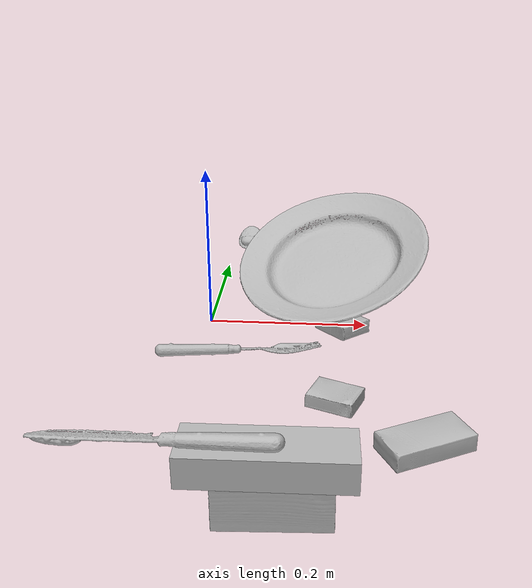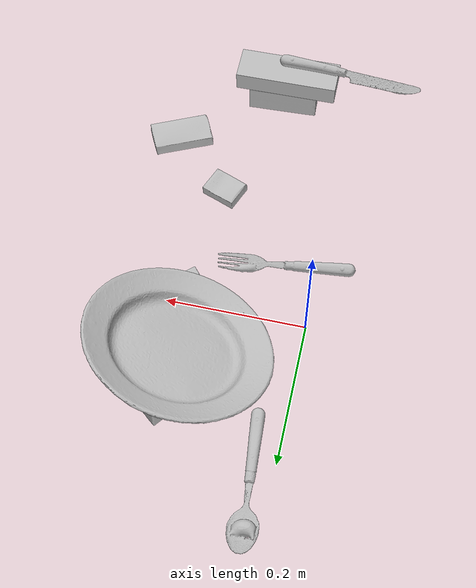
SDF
<sdf version="1.4">
  <world name="default">
    <light name="light1" type="point">
      <pose>0 0 1 0 0 0</pose>
      <diffuse>3 3 3 1</diffuse>
      <specular>3 3 3 1</specular>
    </light>
    <light name="light2" type="point">
      <pose>0 0.5 2 0 0 0</pose>
      <diffuse>1 1 1 1</diffuse>
      <specular>1 1 1 1</specular>
    </light>
    <light name="light3" type="point">
      <pose>0 0.5 2 0 0 0</pose>
      <diffuse>3 3 3 1</diffuse>
      <specular>3 3 3 1</specular>
    </light>
    <scene>
      <ambient>0.7 0.7 0.7</ambient>
    </scene>
    <model name="box11">
      <link name="link_box11">
        <collision name="default">
          <geometry>
            <mesh>
              <uri>model://cracker_box/collision_meshes/collision.obj</uri>
              <scale>0.25 0.25 0.25</scale>
            </mesh>
          </geometry>
          <surface>
            <friction>
              <ode>
                <mu>0.5</mu>
                <mu2>0.5</mu2>
              </ode>
            </friction>
          <contact>
        <ode>
            <max_vel>0</max_vel>
            <min_depth>0.0001</min_depth>
            <kp>1e8</kp>
        </ode>
    </contact></surface>
        </collision>
        <visual name="default">
          <geometry>
            <mesh>
              <uri>model://cracker_box/visual_meshes/visual.dae</uri>
              <scale>0.25 0.25 0.25</scale>
            </mesh>
          </geometry>
        </visual>
        <inertial>
          <mass>0.022244147956371307</mass>
          <pose>0.00023660442093387246 6.358561950037256e-05 -0.00042573834070935845 -0.00031620774024180285 -0.011106489600345375 0.0025467943041161943</pose>
          <inertia>
            <ixx>3.5361988e-06</ixx>
            <iyy>5.838959e-06</iyy>
            <izz>8.33273e-06</izz>
            <ixy>0</ixy>
            <ixz>0</ixz>
            <iyz>0</iyz>
          </inertia>
        </inertial>
      </link>
      <pose>0.15981674194335938 -0.1934477835893631 0.009120453149080276 -0.011787812630951145 -0.0073671721294880635 2.764761190873991</pose>
    </model>
    <model name="box12">
      <link name="link_box12">
        <collision name="default">
          <geometry>
            <mesh>
              <uri>model://wood_block/collision_meshes/collision.obj</uri>
              <scale>0.5 0.5 0.5</scale>
            </mesh>
          </geometry>
          <surface>
            <friction>
              <ode>
                <mu>0.5</mu>
                <mu2>0.5</mu2>
              </ode>
            </friction>
          <contact>
        <ode>
            <max_vel>0</max_vel>
            <min_depth>0.0001</min_depth>
            <kp>1e8</kp>
        </ode>
    </contact></surface>
        </collision>
        <visual name="default">
          <geometry>
            <mesh>
              <uri>model://wood_block/visual_meshes/visual.dae</uri>
              <scale>0.5 0.5 0.5</scale>
            </mesh>
          </geometry>
        </visual>
        <inertial>
          <mass>0.19826212525367737</mass>
          <pose>-2.9066577553749084e-06 -0.00028540476341731846 0.00013204291462898254 -0.05221087153268513 -0.0051926957009938435 -0.006861378574469354</pose>
          <inertia>
            <ixx>6.632619e-05</ixx>
            <iyy>0.00020952444</iyy>
            <izz>0.0002087407</izz>
            <ixy>0</ixy>
            <ixz>0</ixz>
            <iyz>0</iyz>
          </inertia>
        </inertial>
      </link>
      <pose>0.10685034841299057 -0.3768015503883362 0.02262936159968376 -0.0052189372853298464 0.005720256366020585 -3.09671022319252</pose>
    </model>
    <model name="box13">
      <link name="link_box13">
        <collision name="default">
          <geometry>
            <mesh>
              <uri>model://pudding_box/collision_meshes/collision.obj</uri>
              <scale>0.5 0.5 0.5</scale>
            </mesh>
          </geometry>
          <surface>
            <friction>
              <ode>
                <mu>0.5</mu>
                <mu2>0.5</mu2>
              </ode>
            </friction>
          <contact>
        <ode>
            <max_vel>0</max_vel>
            <min_depth>0.0001</min_depth>
            <kp>1e8</kp>
        </ode>
    </contact></surface>
        </collision>
        <visual name="default">
          <geometry>
            <mesh>
              <uri>model://pudding_box/visual_meshes/visual.dae</uri>
              <scale>0.5 0.5 0.5</scale>
            </mesh>
          </geometry>
        </visual>
        <inertial>
          <mass>0.049741584807634354</mass>
          <pose>0.00024474109522998333 0.0004033942532259971 -0.0002594413817860186 0.005213101800084814 -0.006603799174386178 0.020079821432586128</pose>
          <inertia>
            <ixx>1.4057575e-05</ixx>
            <iyy>9.458037e-06</iyy>
            <izz>2.0759684e-05</izz>
            <ixy>0</ixy>
            <ixz>0</ixz>
            <iyz>0</iyz>
          </inertia>
        </inertial>
      </link>
      <pose>0.16936562955379486 -0.016880858689546585 0.009969846345484257 0.03690587140411407 0.0018025482093918025 -2.4316327891507648</pose>
    </model>
    <model name="box21">
      <link name="link_box21">
        <collision name="default">
          <geometry>
            <mesh>
              <uri>model://rubiks_cube/collision_meshes/collision.obj</uri>
              <scale>1.0 1.0 1.0</scale>
            </mesh>
          </geometry>
          <surface>
            <friction>
              <ode>
                <mu>0.5</mu>
                <mu2>0.5</mu2>
              </ode>
            </friction>
          <contact>
        <ode>
            <max_vel>0</max_vel>
            <min_depth>0.0001</min_depth>
            <kp>1e8</kp>
        </ode>
    </contact></surface>
        </collision>
        <visual name="default">
          <geometry>
            <mesh>
              <uri>model://rubiks_cube/visual_meshes/visual.dae</uri>
              <scale>1.0 1.0 1.0</scale>
            </mesh>
          </geometry>
        </visual>
        <inertial>
          <mass>0.14589080214500427</mass>
          <pose>2.6721043468569405e-05 5.256966323941015e-05 -7.264316082000732e-06 -0.054672881442690106 -0.09814117646273159 -0.034455034483302956</pose>
          <inertia>
            <ixx>8.061447e-05</ixx>
            <iyy>8.023852e-05</iyy>
            <izz>8.128248e-05</izz>
            <ixy>0</ixy>
            <ixz>0</ixz>
            <iyz>0</iyz>
          </inertia>
        </inertial>
      </link>
      <pose>0.17347359657287598 0.14382673799991608 0.02867867983877659 -1.975440899756841e-05 -1.0764803353247126e-05 -2.212013922635707</pose>
    </model>
    <model name="box22">
      <link name="link_box22">
        <collision name="default">
          <geometry>
            <mesh>
              <uri>model://jenga/collision_meshes/collision.obj</uri>
              <scale>1.0 1.0 1.0</scale>
            </mesh>
          </geometry>
          <surface>
            <friction>
              <ode>
                <mu>0.5</mu>
                <mu2>0.5</mu2>
              </ode>
            </friction>
          <contact>
        <ode>
            <max_vel>0</max_vel>
            <min_depth>0.0001</min_depth>
            <kp>1e8</kp>
        </ode>
    </contact></surface>
        </collision>
        <visual name="default">
          <geometry>
            <mesh>
              <uri>model://jenga/visual_meshes/visual.dae</uri>
              <scale>1.0 1.0 1.0</scale>
            </mesh>
          </geometry>
        </visual>
        <inertial>
          <mass>0.13963866233825684</mass>
          <pose>-2.502855807051674e-07 -0.00010250010382151231 -4.092339804628864e-05 0.0 -7.342154049184251e-07 0.0</pose>
          <inertia>
            <ixx>3.8641407e-05</ixx>
            <iyy>0.00026183313</iyy>
            <izz>0.00027952914</izz>
            <ixy>0</ixy>
            <ixz>0</ixz>
            <iyz>0</iyz>
          </inertia>
        </inertial>
      </link>
      <pose>0.10262840986251831 -0.3780261278152466 0.06041635572910309 0.005114862933597192 0.00020373560200860676 0.009472614958461623</pose>
    </model>
    <model name="box23">
      <link name="link_box23">
        <collision name="default">
          <geometry>
            <mesh>
              <uri>model://sugar_box/collision_meshes/collision.obj</uri>
              <scale>0.5 0.5 0.5</scale>
            </mesh>
          </geometry>
          <surface>
            <friction>
              <ode>
                <mu>0.5</mu>
                <mu2>0.5</mu2>
              </ode>
            </friction>
          <contact>
        <ode>
            <max_vel>0</max_vel>
            <min_depth>0.0001</min_depth>
            <kp>1e8</kp>
        </ode>
    </contact></surface>
        </collision>
        <visual name="default">
          <geometry>
            <mesh>
              <uri>model://sugar_box/visual_meshes/visual.dae</uri>
              <scale>0.5 0.5 0.5</scale>
            </mesh>
          </geometry>
        </visual>
        <inertial>
          <mass>0.09426560252904892</mass>
          <pose>0.0005171863595023751 1.924554817378521e-05 -0.00018182402709499002 -0.00040462606744182556 0.0010506635219056535 0.0026153790218759383</pose>
          <inertia>
            <ixx>1.963546e-05</ixx>
            <iyy>6.346583e-05</iyy>
            <izz>7.597618e-05</izz>
            <ixy>0</ixy>
            <ixz>0</ixz>
            <iyz>0</iyz>
          </inertia>
        </inertial>
      </link>
      <pose>0.2454259842634201 -0.2727595567703247 0.01139930821955204 0.0007753536188688605 -0.023432729138155233 0.4464120919830739</pose>
    </model>
    <model name="plate1">
      <link name="link_plate1">
        <collision name="default">
          <geometry>
            <mesh>
              <uri>model://plate/collision_meshes/collision.obj</uri>
              <scale>1.0 1.0 1.0</scale>
            </mesh>
          </geometry>
          <surface>
            <friction>
              <ode>
                <mu>0.5</mu>
                <mu2>0.5</mu2>
              </ode>
            </friction>
          <contact>
        <ode>
            <max_vel>0</max_vel>
            <min_depth>0.0001</min_depth>
            <kp>1e8</kp>
        </ode>
    </contact></surface>
        </collision>
        <visual name="default">
          <geometry>
            <mesh>
              <uri>model://plate/visual_meshes/visual.dae</uri>
              <scale>1.0 1.0 1.0</scale>
            </mesh>
          </geometry>
        </visual>
        <inertial>
          <mass>0.11197491735219955</mass>
          <pose>-0.0006044617621228099 0.00027825823053717613 -0.001056199544109404 0.00221882520869589 -0.003225452482750881 0.45259630068278056</pose>
          <inertia>
            <ixx>0.0005238209</ixx>
            <iyy>0.00051881076</iyy>
            <izz>0.0010245154</izz>
            <ixy>0</ixy>
            <ixz>0</ixz>
            <iyz>0</iyz>
          </inertia>
        </inertial>
      </link>
      <pose>0.15689979493618011 0.08709657937288284 0.05799403786659241 0.3824930766851473 -0.18256785921807334 -0.15357219633535937</pose>
    </model>
    <model name="silverware1">
      <link name="link_silverware1">
        <collision name="default">
          <geometry>
            <mesh>
              <uri>model://knife/collision_meshes/collision.obj</uri>
              <scale>1.0 1.0 1.0</scale>
            </mesh>
          </geometry>
          <surface>
            <friction>
              <ode>
                <mu>0.5</mu>
                <mu2>0.5</mu2>
              </ode>
            </friction>
          <contact>
        <ode>
            <max_vel>0</max_vel>
            <min_depth>0.0001</min_depth>
            <kp>1e8</kp>
        </ode>
    </contact></surface>
        </collision>
        <visual name="default">
          <geometry>
            <mesh>
              <uri>model://knife/visual_meshes/visual.dae</uri>
              <scale>1.0 1.0 1.0</scale>
            </mesh>
          </geometry>
        </visual>
        <inertial>
          <mass>0.01465720683336258</mass>
          <pose>-0.023785248398780823 0.0015275123296305537 5.062019408796914e-05 0.07304601322977639 0.017248415474028462 -0.007409829977624996</pose>
          <inertia>
            <ixx>4.1603096e-07</ixx>
            <iyy>5.6310615e-05</iyy>
            <izz>5.6444613e-05</izz>
            <ixy>0</ixy>
            <ixz>0</ixz>
            <iyz>0</iyz>
          </inertia>
        </inertial>
      </link>
      <pose>0.010507840663194656 -0.3828493058681488 0.07879707217216492 0.19436679274737595 0.035726910806210745 3.0935590251322775</pose>
    </model>
    <model name="silverware2">
      <link name="link_silverware2">
        <collision name="default">
          <geometry>
            <mesh>
              <uri>model://spoon/collision_meshes/collision.obj</uri>
              <scale>1.0 1.0 1.0</scale>
            </mesh>
          </geometry>
          <surface>
            <friction>
              <ode>
                <mu>0.5</mu>
                <mu2>0.5</mu2>
              </ode>
            </friction>
          <contact>
        <ode>
            <max_vel>0</max_vel>
            <min_depth>0.0001</min_depth>
            <kp>1e8</kp>
        </ode>
    </contact></surface>
        </collision>
        <visual name="default">
          <geometry>
            <mesh>
              <uri>model://spoon/visual_meshes/visual.dae</uri>
              <scale>1.0 1.0 1.0</scale>
            </mesh>
          </geometry>
        </visual>
        <inertial>
          <mass>0.03463635593652725</mass>
          <pose>-0.005526320077478886 -0.0016034176805987954 -0.0007271658396348357 0.035218626746325574 -0.03906584480927328 0.006150611928774215</pose>
          <inertia>
            <ixx>1.9265303e-06</ixx>
            <iyy>0.0001317902</iyy>
            <izz>0.00013274024</izz>
            <ixy>0</ixy>
            <ixz>0</ixz>
            <iyz>0</iyz>
          </inertia>
        </inertial>
      </link>
      <pose>0.027427678927779198 0.23033885657787323 0.008385262452065945 0.006728682706246469 0.026892987740745753 1.6518492750291411</pose>
    </model>
    <model name="silverware3">
      <link name="link_silverware3">
        <collision name="default">
          <geometry>
            <mesh>
              <uri>model://fork/collision_meshes/collision.obj</uri>
              <scale>1.0 1.0 1.0</scale>
            </mesh>
          </geometry>
          <surface>
            <friction>
              <ode>
                <mu>0.5</mu>
                <mu2>0.5</mu2>
              </ode>
            </friction>
          <contact>
        <ode>
            <max_vel>0</max_vel>
            <min_depth>0.0001</min_depth>
            <kp>1e8</kp>
        </ode>
    </contact></surface>
        </collision>
        <visual name="default">
          <geometry>
            <mesh>
              <uri>model://fork/visual_meshes/visual.dae</uri>
              <scale>1.0 1.0 1.0</scale>
            </mesh>
          </geometry>
        </visual>
        <inertial>
          <mass>0.019285527989268303</mass>
          <pose>-0.029570043087005615 0.0004658823017962277 0.0003218861238565296 -0.013551447953525298 -0.010977835959949084 0.014453901308334693</pose>
          <inertia>
            <ixx>6.760669e-07</ixx>
            <iyy>5.0348972e-05</iyy>
            <izz>5.065136e-05</izz>
            <ixy>0</ixy>
            <ixz>0</ixz>
            <iyz>0</iyz>
          </inertia>
        </inertial>
      </link>
      <pose>0.04508080706000328 -0.08767116069793701 0.005759227555245161 -0.19109044223877705 0.023943328520730528 0.11744248416566866</pose>
    </model>
  <physics type="ode">
      <max_contacts>50</max_contacts>
      <ode>
        <solver>
          <type>quick</type>
          <iters>75</iters>
        </solver>
        <constraints>
          <contact_max_correcting_vel>0</contact_max_correcting_vel>
          <contact_surface_layer>0</contact_surface_layer>
        </constraints>
      </ode>
    </physics></world>
</sdf>
